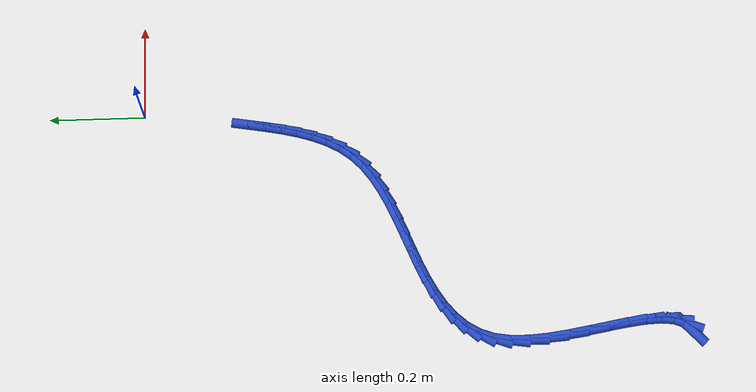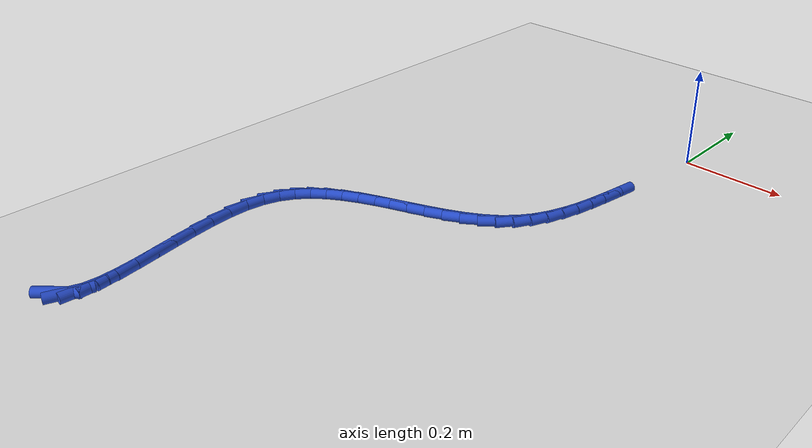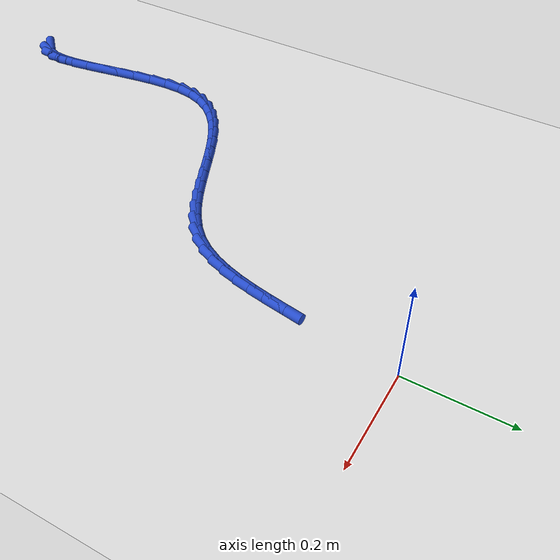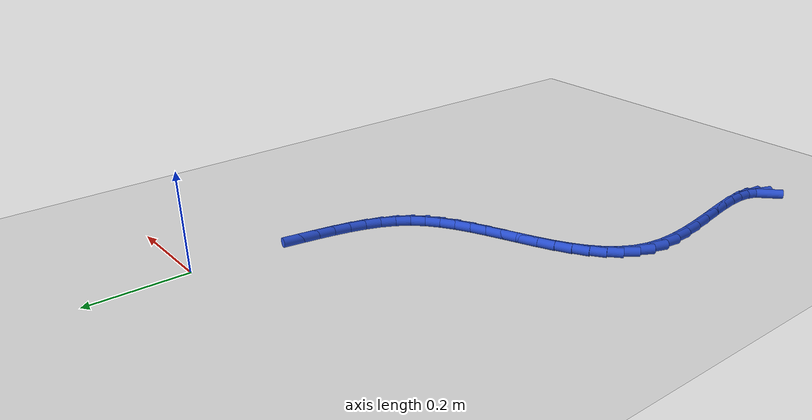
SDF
<sdf version="1.6">
 <world name="default">
  <model name="ground_plane">
   <static>1</static>
   <link name="link">
    <collision name="collision">
     <geometry><plane><normal>0 0 1</normal><size>100 100</size></plane></geometry>
     <surface><friction><ode><mu>100</mu><mu2>50</mu2></ode></friction></surface>
    </collision>
    <visual name="visual">
     <cast_shadows>0</cast_shadows>
     <geometry><plane><normal>0 0 1</normal><size>100 100</size></plane></geometry>
     <material>
      <script><uri>file://media/materials/scripts/gazebo.material</uri><name>Gazebo/WhiteGlow</name></script>
     </material>
    </visual>
   </link>
  </model>
  <model name="line">
   <link name="link_239">
    <pose>-0.48666986064453266 -1.1077663987715216 0.01 0 1.57 0.7502573100786962</pose>
    <collision name="collision">
     <geometry><cylinder><radius>0.01</radius><length>0.08</length></cylinder></geometry>
    </collision>
    <visual name="visual">
     <material>
      <script><name>Gazebo/Blue</name><uri>file://media/materials/scripts/gazebo.material</uri></script>
     </material>
     <geometry><cylinder><radius>0.01</radius><length>0.08</length></cylinder></geometry>
    </visual>
   </link>
   <link name="link_240">
    <pose>-0.47257832877048866 -1.0946320032342476 0.01 0 1.57 1.2075907205375949</pose>
    <collision name="collision">
     <geometry><cylinder><radius>0.01</radius><length>0.08</length></cylinder></geometry>
    </collision>
    <visual name="visual">
     <material>
      <script><name>Gazebo/Blue</name><uri>file://media/materials/scripts/gazebo.material</uri></script>
     </material>
     <geometry><cylinder><radius>0.01</radius><length>0.08</length></cylinder></geometry>
    </visual>
   </link>
   <link name="link_241">
    <pose>-0.46484466588676054 -1.0742838496694445 0.01 0 1.57 1.477261770344813</pose>
    <collision name="collision">
     <geometry><cylinder><radius>0.01</radius><length>0.08</length></cylinder></geometry>
    </collision>
    <visual name="visual">
     <material>
      <script><name>Gazebo/Blue</name><uri>file://media/materials/scripts/gazebo.material</uri></script>
     </material>
     <geometry><cylinder><radius>0.01</radius><length>0.08</length></cylinder></geometry>
    </visual>
   </link>
   <link name="link_242">
    <pose>-0.462358823751728 -1.0477846744901198 0.01 0 1.57 -1.5185468955284471</pose>
    <collision name="collision">
     <geometry><cylinder><radius>0.01</radius><length>0.08</length></cylinder></geometry>
    </collision>
    <visual name="visual">
     <material>
      <script><name>Gazebo/Blue</name><uri>file://media/materials/scripts/gazebo.material</uri></script>
     </material>
     <geometry><cylinder><radius>0.01</radius><length>0.08</length></cylinder></geometry>
    </visual>
   </link>
   <link name="link_243">
    <pose>-0.46401075412377063 -1.0161972141092794 0.01 0 1.57 -1.4401419320253568</pose>
    <collision name="collision">
     <geometry><cylinder><radius>0.01</radius><length>0.08</length></cylinder></geometry>
    </collision>
    <visual name="visual">
     <material>
      <script><name>Gazebo/Blue</name><uri>file://media/materials/scripts/gazebo.material</uri></script>
     </material>
     <geometry><cylinder><radius>0.01</radius><length>0.08</length></cylinder></geometry>
    </visual>
   </link>
   <link name="link_244">
    <pose>-0.46869040876126794 -0.9805842049399327 0.01 0 1.57 -1.4014126280611667</pose>
    <collision name="collision">
     <geometry><cylinder><radius>0.01</radius><length>0.08</length></cylinder></geometry>
    </collision>
    <visual name="visual">
     <material>
      <script><name>Gazebo/Blue</name><uri>file://media/materials/scripts/gazebo.material</uri></script>
     </material>
     <geometry><cylinder><radius>0.01</radius><length>0.08</length></cylinder></geometry>
    </visual>
   </link>
   <link name="link_245">
    <pose>-0.4752877394225993 -0.9420083833950852 0.01 0 1.57 -1.3898500037041512</pose>
    <collision name="collision">
     <geometry><cylinder><radius>0.01</radius><length>0.08</length></cylinder></geometry>
    </collision>
    <visual name="visual">
     <material>
      <script><name>Gazebo/Blue</name><uri>file://media/materials/scripts/gazebo.material</uri></script>
     </material>
     <geometry><cylinder><radius>0.01</radius><length>0.08</length></cylinder></geometry>
    </visual>
   </link>
   <link name="link_246">
    <pose>-0.4826926978661444 -0.9015324858877444 0.01 0 1.57 -1.4005414860628211</pose>
    <collision name="collision">
     <geometry><cylinder><radius>0.01</radius><length>0.08</length></cylinder></geometry>
    </collision>
    <visual name="visual">
     <material>
      <script><name>Gazebo/Blue</name><uri>file://media/materials/scripts/gazebo.material</uri></script>
     </material>
     <geometry><cylinder><radius>0.01</radius><length>0.08</length></cylinder></geometry>
    </visual>
   </link>
   <link name="link_247">
    <pose>-0.4897952358502828 -0.8602192488309175 0.01 0 1.57 -1.4331860989445977</pose>
    <collision name="collision">
     <geometry><cylinder><radius>0.01</radius><length>0.08</length></cylinder></geometry>
    </collision>
    <visual name="visual">
     <material>
      <script><name>Gazebo/Blue</name><uri>file://media/materials/scripts/gazebo.material</uri></script>
     </material>
     <geometry><cylinder><radius>0.01</radius><length>0.08</length></cylinder></geometry>
    </visual>
   </link>
   <link name="link_248">
    <pose>-0.49548530513339395 -0.8191314086376112 0.01 0 1.57 -1.4913764019120286</pose>
    <collision name="collision">
     <geometry><cylinder><radius>0.01</radius><length>0.08</length></cylinder></geometry>
    </collision>
    <visual name="visual">
     <material>
      <script><name>Gazebo/Blue</name><uri>file://media/materials/scripts/gazebo.material</uri></script>
     </material>
     <geometry><cylinder><radius>0.01</radius><length>0.08</length></cylinder></geometry>
    </visual>
   </link>
   <link name="link_249">
    <pose>-0.4986528574738575 -0.7793317017208329 0.01 0 1.57 1.5583796810323587</pose>
    <collision name="collision">
     <geometry><cylinder><radius>0.01</radius><length>0.08</length></cylinder></geometry>
    </collision>
    <visual name="visual">
     <material>
      <script><name>Gazebo/Blue</name><uri>file://media/materials/scripts/gazebo.material</uri></script>
     </material>
     <geometry><cylinder><radius>0.01</radius><length>0.08</length></cylinder></geometry>
    </visual>
   </link>
   <link name="link_250">
    <pose>-0.49818784463005295 -0.7418828644935895 0.01 0 1.57 1.4189739374096904</pose>
    <collision name="collision">
     <geometry><cylinder><radius>0.01</radius><length>0.08</length></cylinder></geometry>
    </collision>
    <visual name="visual">
     <material>
      <script><name>Gazebo/Blue</name><uri>file://media/materials/scripts/gazebo.material</uri></script>
     </material>
     <geometry><cylinder><radius>0.01</radius><length>0.08</length></cylinder></geometry>
    </visual>
   </link>
   <link name="link_251">
    <pose>-0.4929804335204877 -0.7078474421071265 0.01 0 1.57 1.2276798538989544</pose>
    <collision name="collision">
     <geometry><cylinder><radius>0.01</radius><length>0.08</length></cylinder></geometry>
    </collision>
    <visual name="visual">
     <material>
      <script><name>Gazebo/Blue</name><uri>file://media/materials/scripts/gazebo.material</uri></script>
     </material>
     <geometry><cylinder><radius>0.01</radius><length>0.08</length></cylinder></geometry>
    </visual>
   </link>
   <link name="link_252">
    <pose>-0.48229998047914435 -0.6779509078010437 0.01 0 1.57 1.0279329914280815</pose>
    <collision name="collision">
     <geometry><cylinder><radius>0.01</radius><length>0.08</length></cylinder></geometry>
    </collision>
    <visual name="visual">
     <material>
      <script><name>Gazebo/Blue</name><uri>file://media/materials/scripts/gazebo.material</uri></script>
     </material>
     <geometry><cylinder><radius>0.01</radius><length>0.08</length></cylinder></geometry>
    </visual>
   </link>
   <link name="link_253">
    <pose>-0.4665754444068978 -0.651887932165876 0.01 0 1.57 0.8462879860869539</pose>
    <collision name="collision">
     <geometry><cylinder><radius>0.01</radius><length>0.08</length></cylinder></geometry>
    </collision>
    <visual name="visual">
     <material>
      <script><name>Gazebo/Blue</name><uri>file://media/materials/scripts/gazebo.material</uri></script>
     </material>
     <geometry><cylinder><radius>0.01</radius><length>0.08</length></cylinder></geometry>
    </visual>
   </link>
   <link name="link_254">
    <pose>-0.44645668423259405 -0.6291568216752482 0.01 0 1.57 0.6951091564293425</pose>
    <collision name="collision">
     <geometry><cylinder><radius>0.01</radius><length>0.08</length></cylinder></geometry>
    </collision>
    <visual name="visual">
     <material>
      <script><name>Gazebo/Blue</name><uri>file://media/materials/scripts/gazebo.material</uri></script>
     </material>
     <geometry><cylinder><radius>0.01</radius><length>0.08</length></cylinder></geometry>
    </visual>
   </link>
   <link name="link_255">
    <pose>-0.4225935588850789 -0.6092558828027851 0.01 0 1.57 0.57767799724519</pose>
    <collision name="collision">
     <geometry><cylinder><radius>0.01</radius><length>0.08</length></cylinder></geometry>
    </collision>
    <visual name="visual">
     <material>
      <script><name>Gazebo/Blue</name><uri>file://media/materials/scripts/gazebo.material</uri></script>
     </material>
     <geometry><cylinder><radius>0.01</radius><length>0.08</length></cylinder></geometry>
    </visual>
   </link>
   <link name="link_256">
    <pose>-0.39563592729319846 -0.5916834220221123 0.01 0 1.57 0.49166263793957043</pose>
    <collision name="collision">
     <geometry><cylinder><radius>0.01</radius><length>0.08</length></cylinder></geometry>
    </collision>
    <visual name="visual">
     <material>
      <script><name>Gazebo/Blue</name><uri>file://media/materials/scripts/gazebo.material</uri></script>
     </material>
     <geometry><cylinder><radius>0.01</radius><length>0.08</length></cylinder></geometry>
    </visual>
   </link>
   <link name="link_257">
    <pose>-0.3662336483857987 -0.5759377458068546 0.01 0 1.57 0.43298735688433876</pose>
    <collision name="collision">
     <geometry><cylinder><radius>0.01</radius><length>0.08</length></cylinder></geometry>
    </collision>
    <visual name="visual">
     <material>
      <script><name>Gazebo/Blue</name><uri>file://media/materials/scripts/gazebo.material</uri></script>
     </material>
     <geometry><cylinder><radius>0.01</radius><length>0.08</length></cylinder></geometry>
    </visual>
   </link>
   <link name="link_258">
    <pose>-0.3350365810917258 -0.5615171606306375 0.01 0 1.57 0.3979840499892229</pose>
    <collision name="collision">
     <geometry><cylinder><radius>0.01</radius><length>0.08</length></cylinder></geometry>
    </collision>
    <visual name="visual">
     <material>
      <script><name>Gazebo/Blue</name><uri>file://media/materials/scripts/gazebo.material</uri></script>
     </material>
     <geometry><cylinder><radius>0.01</radius><length>0.08</length></cylinder></geometry>
    </visual>
   </link>
   <link name="link_259">
    <pose>-0.30269458433982555 -0.5479199729670862 0.01 0 1.57 0.3841935652540338</pose>
    <collision name="collision">
     <geometry><cylinder><radius>0.01</radius><length>0.08</length></cylinder></geometry>
    </collision>
    <visual name="visual">
     <material>
      <script><name>Gazebo/Blue</name><uri>file://media/materials/scripts/gazebo.material</uri></script>
     </material>
     <geometry><cylinder><radius>0.01</radius><length>0.08</length></cylinder></geometry>
    </visual>
   </link>
   <link name="link_260">
    <pose>-0.269857517058944 -0.5346444892898256 0.01 0 1.57 0.39055640022601057</pose>
    <collision name="collision">
     <geometry><cylinder><radius>0.01</radius><length>0.08</length></cylinder></geometry>
    </collision>
    <visual name="visual">
     <material>
      <script><name>Gazebo/Blue</name><uri>file://media/materials/scripts/gazebo.material</uri></script>
     </material>
     <geometry><cylinder><radius>0.01</radius><length>0.08</length></cylinder></geometry>
    </visual>
   </link>
   <link name="link_261">
    <pose>-0.2371752381779265 -0.5211890160724811 0.01 0 1.57 0.4174203646385067</pose>
    <collision name="collision">
     <geometry><cylinder><radius>0.01</radius><length>0.08</length></cylinder></geometry>
    </collision>
    <visual name="visual">
     <material>
      <script><name>Gazebo/Blue</name><uri>file://media/materials/scripts/gazebo.material</uri></script>
     </material>
     <geometry><cylinder><radius>0.01</radius><length>0.08</length></cylinder></geometry>
    </visual>
   </link>
   <link name="link_262">
    <pose>-0.2052976066256207 -0.5070518597886783 0.01 0 1.57 0.4665089594979909</pose>
    <collision name="collision">
     <geometry><cylinder><radius>0.01</radius><length>0.08</length></cylinder></geometry>
    </collision>
    <visual name="visual">
     <material>
      <script><name>Gazebo/Blue</name><uri>file://media/materials/scripts/gazebo.material</uri></script>
     </material>
     <geometry><cylinder><radius>0.01</radius><length>0.08</length></cylinder></geometry>
    </visual>
   </link>
   <link name="link_263">
    <pose>-0.17487448133087174 -0.49173132691204213 0.01 0 1.57 0.5407919338091213</pose>
    <collision name="collision">
     <geometry><cylinder><radius>0.01</radius><length>0.08</length></cylinder></geometry>
    </collision>
    <visual name="visual">
     <material>
      <script><name>Gazebo/Blue</name><uri>file://media/materials/scripts/gazebo.material</uri></script>
     </material>
     <geometry><cylinder><radius>0.01</radius><length>0.08</length></cylinder></geometry>
    </visual>
   </link>
   <link name="link_264">
    <pose>-0.14655572122252564 -0.4747257239161978 0.01 0 1.57 0.6439757136355724</pose>
    <collision name="collision">
     <geometry><cylinder><radius>0.01</radius><length>0.08</length></cylinder></geometry>
    </collision>
    <visual name="visual">
     <material>
      <script><name>Gazebo/Blue</name><uri>file://media/materials/scripts/gazebo.material</uri></script>
     </material>
     <geometry><cylinder><radius>0.01</radius><length>0.08</length></cylinder></geometry>
    </visual>
   </link>
   <link name="link_265">
    <pose>-0.12099118522942848 -0.45553335727477057 0.01 0 1.57 0.7790489892216538</pose>
    <collision name="collision">
     <geometry><cylinder><radius>0.01</radius><length>0.08</length></cylinder></geometry>
    </collision>
    <visual name="visual">
     <material>
      <script><name>Gazebo/Blue</name><uri>file://media/materials/scripts/gazebo.material</uri></script>
     </material>
     <geometry><cylinder><radius>0.01</radius><length>0.08</length></cylinder></geometry>
    </visual>
   </link>
   <link name="link_266">
    <pose>-0.09883073208784271 -0.43365253362792494 0.01 0 1.57 0.9365820990555591</pose>
    <collision name="collision">
     <geometry><cylinder><radius>0.01</radius><length>0.08</length></cylinder></geometry>
    </collision>
    <visual name="visual">
     <material>
      <script><name>Gazebo/Blue</name><uri>file://media/materials/scripts/gazebo.material</uri></script>
     </material>
     <geometry><cylinder><radius>0.01</radius><length>0.08</length></cylinder></geometry>
    </visual>
   </link>
   <link name="link_267">
    <pose>-0.08051920618258762 -0.40875884878668683 0.01 0 1.57 1.0773265380414745</pose>
    <collision name="collision">
     <geometry><cylinder><radius>0.01</radius><length>0.08</length></cylinder></geometry>
    </collision>
    <visual name="visual">
     <material>
      <script><name>Gazebo/Blue</name><uri>file://media/materials/scripts/gazebo.material</uri></script>
     </material>
     <geometry><cylinder><radius>0.01</radius><length>0.08</length></cylinder></geometry>
    </visual>
   </link>
   <link name="link_268">
    <pose>-0.06570536660907238 -0.38121632500589175 0.01 0 1.57 1.1903919621957788</pose>
    <collision name="collision">
     <geometry><cylinder><radius>0.01</radius><length>0.08</length></cylinder></geometry>
    </collision>
    <visual name="visual">
     <material>
      <script><name>Gazebo/Blue</name><uri>file://media/materials/scripts/gazebo.material</uri></script>
     </material>
     <geometry><cylinder><radius>0.01</radius><length>0.08</length></cylinder></geometry>
    </visual>
   </link>
   <link name="link_269">
    <pose>-0.05384476998476422 -0.35155605922017974 0.01 0 1.57 1.2770590722513984</pose>
    <collision name="collision">
     <geometry><cylinder><radius>0.01</radius><length>0.08</length></cylinder></geometry>
    </collision>
    <visual name="visual">
     <material>
      <script><name>Gazebo/Blue</name><uri>file://media/materials/scripts/gazebo.material</uri></script>
     </material>
     <geometry><cylinder><radius>0.01</radius><length>0.08</length></cylinder></geometry>
    </visual>
   </link>
   <link name="link_270">
    <pose>-0.04439297292712999 -0.32030914836418944 0.01 0 1.57 1.340091068324585</pose>
    <collision name="collision">
     <geometry><cylinder><radius>0.01</radius><length>0.08</length></cylinder></geometry>
    </collision>
    <visual name="visual">
     <material>
      <script><name>Gazebo/Blue</name><uri>file://media/materials/scripts/gazebo.material</uri></script>
     </material>
     <geometry><cylinder><radius>0.01</radius><length>0.08</length></cylinder></geometry>
    </visual>
   </link>
   <link name="link_271">
    <pose>-0.036805532053637464 -0.28800668937256285 0.01 0 1.57 1.3821402842387613</pose>
    <collision name="collision">
     <geometry><cylinder><radius>0.01</radius><length>0.08</length></cylinder></geometry>
    </collision>
    <visual name="visual">
     <material>
      <script><name>Gazebo/Blue</name><uri>file://media/materials/scripts/gazebo.material</uri></script>
     </material>
     <geometry><cylinder><radius>0.01</radius><length>0.08</length></cylinder></geometry>
    </visual>
   </link>
   <link name="link_272">
    <pose>-0.030538003981753468 -0.255179779179939 0.01 0 1.57 1.4049950879057067</pose>
    <collision name="collision">
     <geometry><cylinder><radius>0.01</radius><length>0.08</length></cylinder></geometry>
    </collision>
    <visual name="visual">
     <material>
      <script><name>Gazebo/Blue</name><uri>file://media/materials/scripts/gazebo.material</uri></script>
     </material>
     <geometry><cylinder><radius>0.01</radius><length>0.08</length></cylinder></geometry>
    </visual>
   </link>
   <link name="link_273">
    <pose>-0.025045945342110736 -0.22235951470779305 0.01 0 1.57 1.413114395991192</pose>
    <collision name="collision">
     <geometry><cylinder><radius>0.01</radius><length>0.08</length></cylinder></geometry>
    </collision>
    <visual name="visual">
     <material>
      <script><name>Gazebo/Blue</name><uri>file://media/materials/scripts/gazebo.material</uri></script>
     </material>
     <geometry><cylinder><radius>0.01</radius><length>0.08</length></cylinder></geometry>
    </visual>
   </link>
  </model>
 </world>
</sdf>
